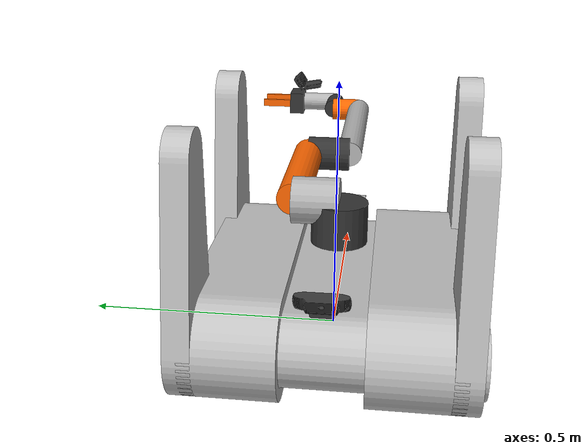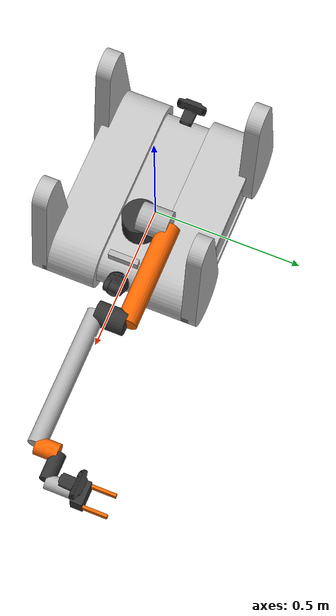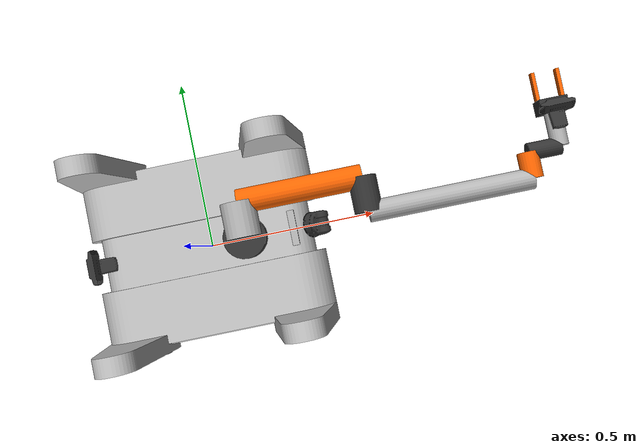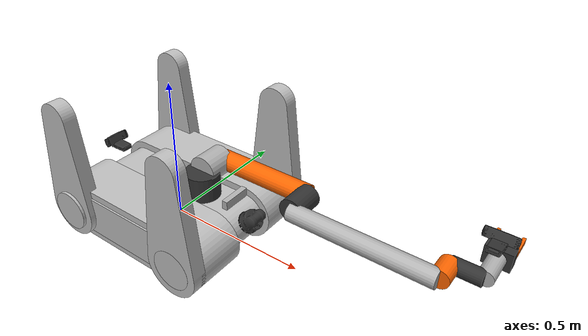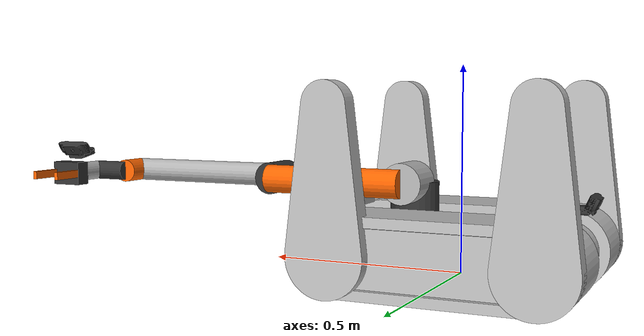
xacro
<?xml version="1.0"?>
<robot name="rescue_robot" xmlns:xacro="http://ros.org/wiki/xacro">

  <!-- ================= DIMENSIONES ================= -->
  <xacro:property name="H_BASE" value="0.15830"/>
  <xacro:property name="OFF_SHOULDER" value="0.10030"/>
  <xacro:property name="L_UPPER" value="0.35316"/>
  <xacro:property name="OFF_ELBOW" value="-0.10030"/>
  <xacro:property name="L_FORE" value="0.46600"/>
  <xacro:property name="L_WRIST1" value="0.07400"/>
  <xacro:property name="L_WRIST_END" value="0.09350"/>
  <xacro:property name="L_TOOL" value="0.28450"/>
  <xacro:property name="L_TOOL_END" value="${L_TOOL-L_WRIST_END}"/>

  <!-- ================= MATERIALES ================= -->
  <material name="gray"><color rgba="0.7 0.7 0.7 1.0"/></material>
  <material name="orange"><color rgba="1.0 0.4 0.0 1.0"/></material>
  <material name="black"><color rgba="0.2 0.2 0.2 1.0"/></material>
  <material name="silver"><color rgba="0.75 0.75 0.75 1.0"/></material>

  <!-- ================= BASE ROBOT ================= -->

  <link name="base_footprint">
    <visual>
      <geometry>
        <box size="0.001 0.001 0.001"/>
      </geometry>
    </visual>
  </link>

  <joint name="base_to_base_footprint" type="fixed">
    <parent link="base_link"/>
    <child link="base_footprint"/>
    <origin xyz="0 0 -0.03" rpy="0 0 0"/>
  </joint>

  <link name="base_link">
    <inertial>
      <origin xyz="0 0 0" rpy="0 0 0"/>
      <mass value="25"/>
      <inertia ixx="1.238151" iyy="1.620218" izz="2.702376" ixy="0.0" iyz="-0.0" ixz="0.0"/>
    </inertial>
    <visual>
      <origin xyz="0 0.55 0" rpy="0 0 0"/>
      <geometry>
        <mesh filename="package://aesir_robot_description/meshes/base_link.stl" scale="0.001 0.001 0.001"/>
      </geometry>
      <material name="silver"/>
    </visual>
    <collision>
      <origin xyz="0 0.55 0" rpy="0 0 0"/>
      <geometry>
        <mesh filename="package://aesir_robot_description/meshes/base_link.stl" scale="0.001 0.001 0.001"/>
      </geometry>
    </collision>
  </link>

  <link name="tracked_1_link">
    <inertial>
      <origin xyz="0 0 0" rpy="0 0 0"/>
      <mass value="3.5"/>
      <inertia ixx="0.064824" iyy="0.377269" izz="0.351452" ixy="0.0" iyz="-0.0" ixz="-0.0"/>
    </inertial>
    <visual>
      <origin xyz="0.24 0.806 -0.06" rpy="0 0 0"/>
      <geometry>
        <mesh filename="package://aesir_robot_description/meshes/tracked_1.stl" scale="0.001 0.001 0.001"/>
      </geometry>
      <material name="silver"/>
    </visual>
    <collision>
      <origin xyz="0.24 0.806 -0.06" rpy="0 0 0"/>
      <geometry>
        <mesh filename="package://aesir_robot_description/meshes/tracked_1.stl" scale="0.001 0.001 0.001"/>
      </geometry>
    </collision>
  </link>

  <link name="tracked_2_link">
    <inertial>
      <origin xyz="0 0 0" rpy="0 0 0"/>
      <mass value="3.5"/>
      <inertia ixx="0.064824" iyy="0.377269" izz="0.351452" ixy="0.0" iyz="0.0" ixz="-0.0"/>
    </inertial>
    <visual>
      <origin xyz="0.24 0.306 -0.06" rpy="0 0 0"/>
      <geometry>
        <mesh filename="package://aesir_robot_description/meshes/tracked_2.stl" scale="0.001 0.001 0.001"/>
      </geometry>
      <material name="silver"/>
    </visual>
    <collision>
      <origin xyz="0.24 0.306 -0.06" rpy="0 0 0"/>
      <geometry>
        <mesh filename="package://aesir_robot_description/meshes/tracked_2.stl" scale="0.001 0.001 0.001"/>
      </geometry>
    </collision>
  </link>

  <!-- ================= SENSORS ================= -->
  <link name="lidar_link">
    <visual>
      <origin rpy="0 0 0" xyz="0 0 0"/>
      <geometry>
        <mesh filename="package://aesir_robot_description/meshes/lidar.stl" scale="0.001 0.001 0.001"/>
      </geometry>
      <material name="black"/>
    </visual>
    <collision>
      <origin rpy="0 0 0" xyz="0 0 0"/>
      <geometry>
        <mesh filename="package://aesir_robot_description/meshes/lidar.stl" scale="0.001 0.001 0.001"/>
      </geometry>
    </collision>
    <inertial>
      <mass value="0.2"/>
      <inertia ixx="0.001" ixy="0" ixz="0" iyy="0.001" iyz="0" izz="0.001"/>
    </inertial>
  </link>

  <joint name="lidar_joint" type="fixed">
    <parent link="base_link"/>
    <child link="lidar_link"/>
    <origin xyz="0.320 0 0.105" rpy="0 0.785398 0"/>
  </joint>

  <link name="oakd_link">
    <visual>
      <geometry>
        <box size="0.02 0.1 0.03"/>
      </geometry>
      <material name="gray"/>
    </visual>
    <collision>
      <geometry>
        <box size="0.02 0.1 0.03"/>
      </geometry>
    </collision>
    <inertial>
      <mass value="0.1"/>
      <inertia ixx="0.0001" ixy="0" ixz="0" iyy="0.0001" iyz="0" izz="0.0001"/>
    </inertial>
  </link>

  <joint name="oakd_joint" type="fixed">
    <parent link="base_link"/>
    <child link="oakd_link"/>
    <origin xyz="0.257 0 0.17" rpy="0 0 0"/>
  </joint>

  <link name="arm_camera_link">
    <visual>
      <origin rpy="0 0 -1.5708" xyz="0.02 0.04 -0.2"/>
      <geometry>
        <mesh filename="package://aesir_robot_description/meshes/logitech_c920.stl" scale="0.001 0.001 0.001"/>
      </geometry>
      <material name="black"/>
    </visual>
    <collision>
      <origin rpy="0 0 -1.5708" xyz="0.02 0.04 -0.2"/>
      <geometry>
        <mesh filename="package://aesir_robot_description/meshes/logitech_c920.stl" scale="0.001 0.001 0.001"/>
      </geometry>
    </collision>
    <inertial>
      <mass value="0.05"/>
      <inertia ixx="0.00001" ixy="0" ixz="0" iyy="0.00001" iyz="0" izz="0.00001"/>
    </inertial>
  </link>

  <joint name="arm_camera_joint" type="fixed">
    <parent link="link_6"/>
    <child link="arm_camera_link"/>
    <origin xyz="0 0 0.06" rpy="-0.174533 0 0"/>
  </joint>

  <link name="back_camera_link">
    <visual>
      <origin rpy="0 0 3.14159" xyz="0.04 -0.027 -0.19"/>
      <geometry>
        <mesh filename="package://aesir_robot_description/meshes/logitech_c920.stl" scale="0.001 0.001 0.001"/>
      </geometry>
      <material name="black"/>
    </visual>
    <collision>
      <origin rpy="0 0 3.14159" xyz="0.04 -0.027 -0.19"/>
      <geometry>
        <mesh filename="package://aesir_robot_description/meshes/logitech_c920.stl" scale="0.001 0.001 0.001"/>
      </geometry>
    </collision>
    <inertial>
      <mass value="0.05"/>
      <inertia ixx="0.00001" ixy="0" ixz="0" iyy="0.00001" iyz="0" izz="0.00001"/>
    </inertial>
  </link>

  <joint name="back_camera_joint" type="fixed">
    <parent link="base_link"/>
    <child link="back_camera_link"/>
    <origin xyz="-0.30 0 0.17" rpy="0 0 3.14159"/>
  </joint>

  <!-- ================= FLIPPER 1 ================= -->
  <link name="flipper_1_link">
    <inertial>
      <origin xyz="5.551115123125783e-17 0.003554085914685201 0.15154044804505273" rpy="0 0 0"/>
      <mass value="3.742066453745571"/>
      <inertia ixx="0.065573" iyy="0.072966" izz="0.008972" ixy="0.0" iyz="-0.00082" ixz="-0.0"/>
    </inertial>
    <visual>
      <origin xyz="0.24 0.836 -0.06" rpy="0 0 0"/>
      <geometry>
        <mesh filename="package://aesir_robot_description/meshes/flipper_1_1.stl" scale="0.001 0.001 0.001"/>
      </geometry>
      <material name="silver"/>
    </visual>
    <collision>
      <origin xyz="0.24 0.836 -0.06" rpy="0 0 3.14159"/>
      <geometry>
        <mesh filename="package://aesir_robot_description/meshes/flipper_1_1.stl" scale="0.001 0.001 0.001"/>
      </geometry>
    </collision>
  </link>

  <!-- ================= FLIPPER 2 ================= -->
  <link name="flipper_2_link">
    <inertial>
      <origin xyz="-2.7755575615628914e-17 -0.0035540859146853676 0.15154044804505265" rpy="0 0 0"/>
      <mass value="3.7420664537455717"/>
      <inertia ixx="0.065573" iyy="0.072966" izz="0.008972" ixy="0.0" iyz="0.00082" ixz="0.0"/>
    </inertial>
    <visual>
      <origin xyz="-0.24 0.276 -0.06" rpy="0 0 0"/>
      <geometry>
        <mesh filename="package://aesir_robot_description/meshes/flipper_4_1.stl" scale="0.001 0.001 0.001"/>
      </geometry>
      <material name="silver"/>
    </visual>
    <collision>
      <origin xyz="-0.24 0.276 -0.06" rpy="0 0 0"/>
      <geometry>
        <mesh filename="package://aesir_robot_description/meshes/flipper_4_1.stl" scale="0.001 0.001 0.001"/>
      </geometry>
    </collision>
  </link>

  <!-- ================= FLIPPER 3 ================= -->
  <link name="flipper_3_link">
    <inertial>
      <origin xyz="5.551115123125783e-17 -0.0035540859146853676 0.15154044804505276" rpy="0 0 0"/>
      <mass value="3.7420664537455717"/>
      <inertia ixx="0.065573" iyy="0.072966" izz="0.008972" ixy="-0.0" iyz="0.00082" ixz="0.0"/>
    </inertial>
    <visual>
      <origin xyz="0.24 0.276 -0.06" rpy="0 0 0"/>
      <geometry>
        <mesh filename="package://aesir_robot_description/meshes/flipper_3_1.stl" scale="0.001 0.001 0.001"/>
      </geometry>
      <material name="silver"/>
    </visual>
    <collision>
      <origin xyz="0.24 0.276 -0.06" rpy="0 0 0"/>
      <geometry>
        <mesh filename="package://aesir_robot_description/meshes/flipper_3_1.stl" scale="0.001 0.001 0.001"/>
      </geometry>
    </collision>
  </link>

  <!-- ================= FLIPPER 4 ================= -->
  <link name="flipper_4_link">
    <inertial>
      <origin xyz="-2.7755575615628914e-17 -0.0035540859146853676 0.15154044804505265" rpy="0 0 0"/>
      <mass value="3.7420664537455717"/>
      <inertia ixx="0.065573" iyy="0.072966" izz="0.008972" ixy="0.0" iyz="0.00082" ixz="0.0"/>
    </inertial>
    <visual>
      <origin xyz="-0.24 0.276 -0.06" rpy="0 0 0"/>
      <geometry>
        <mesh filename="package://aesir_robot_description/meshes/flipper_4_1.stl" scale="0.001 0.001 0.001"/>
      </geometry>
      <material name="silver"/>
    </visual>
    <collision>
      <origin xyz="-0.24 0.276 -0.06" rpy="0 0 0"/>
      <geometry>
        <mesh filename="package://aesir_robot_description/meshes/flipper_4_1.stl" scale="0.001 0.001 0.001"/>
      </geometry>
    </collision>
  </link>

  <!-- ================= JOINTS BASE AND FLIPPERS ================= -->

  <joint name="Rigid 1" type="fixed">
    <origin xyz="-0.24 -0.256 0.06" rpy="0 0 0"/>
    <parent link="base_link"/>
    <child link="tracked_1_link"/>
  </joint>

  <joint name="Rigid 2" type="fixed">
    <origin xyz="-0.24 0.256 0.06" rpy="0 0 0"/>
    <parent link="base_link"/>
    <child link="tracked_2_link"/>
  </joint>

  <joint name="flipper_joint_1" type="continuous">
    <origin xyz="-0.24 -0.256 0.06" rpy="0 0 0"/>
    <parent link="base_link"/>
    <child link="flipper_1_link"/>
    <axis xyz="0.0 -1.0 0.0"/>
  </joint>

  <joint name="flipper_joint_2" type="continuous">
    <origin xyz="0.24 -0.256 0.06" rpy="0 0 0"/>
    <parent link="base_link"/>
    <child link="flipper_2_link"/>
    <axis xyz="0.0 -1.0 0.0"/>
  </joint>

  <joint name="flipper_joint_3" type="continuous">
    <origin xyz="0.24 0.256 0.06" rpy="0 0 0"/>
    <parent link="base_link"/>
    <child link="flipper_4_link"/>
    <axis xyz="0.0 1.0 0.0"/>
  </joint>

  <joint name="flipper_joint_4" type="continuous">
    <origin xyz="-0.24 0.256 0.06" rpy="0 0 0"/>
    <parent link="base_link"/>
    <child link="flipper_3_link"/>
    <axis xyz="0.0 1.0 0.0"/>
  </joint>

  <!-- ================= BASE ARM ================= -->
  <joint name="arm_mount_joint" type="fixed">
    <parent link="base_link"/>
    <child link="arm_base_link"/>
    <origin xyz="0.12 0 0.06" rpy="0 0 0"/>
  </joint>

  <link name="arm_base_link">
    <visual>
      <origin xyz="0 0 ${H_BASE/2}" rpy="0 0 0"/>
      <geometry><cylinder radius="0.06" length="${H_BASE}"/></geometry>
      <material name="black"/>
    </visual>
    <collision>
      <origin xyz="0 0 ${H_BASE/2}" rpy="0 0 0"/>
      <geometry><cylinder radius="0.06" length="${H_BASE}"/></geometry>
    </collision>
  </link>

  <!-- ================= JOINT 1 ================= -->
  <joint name="joint_1" type="revolute">
    <parent link="arm_base_link"/>
    <child link="link_1"/>
    <origin xyz="0 0 ${H_BASE}" rpy="0 0 0"/>
    <axis xyz="0 0 1"/>
    <limit lower="-3.14" upper="3.14" effort="150.0" velocity="3.14"/>
  </joint>

  <link name="link_1">
    <visual>
      <origin xyz="0 ${OFF_SHOULDER/2} 0" rpy="${pi/2} 0 0"/>
      <geometry><cylinder radius="0.05" length="${OFF_SHOULDER}"/></geometry>
      <material name="gray"/>
    </visual>
    <collision>
      <origin xyz="0 ${OFF_SHOULDER/2} 0" rpy="${pi/2} 0 0"/>
      <geometry><cylinder radius="0.05" length="${OFF_SHOULDER}"/></geometry>
    </collision>
    <inertial>
      <origin xyz="0 0 0" rpy="0 0 0"/>
      <mass value="1.5"/>
      <inertia ixx="0.01" ixy="0" ixz="0"
              iyy="0.01" iyz="0" izz="0.005"/>
    </inertial>
  </link>

  <!-- ================= JOINT 2 ================= -->
  <joint name="joint_2" type="revolute">
    <parent link="link_1"/>
    <child link="link_2"/>
    <origin xyz="0 ${OFF_SHOULDER} 0" rpy="0 0 0"/>
    <axis xyz="0 1 0"/>
    <limit lower="-3.14" upper="3.14" effort="150.0" velocity="3.14"/>
  </joint>

  <link name="link_2">
    <visual>
      <origin xyz="${L_UPPER/2} 0 0" rpy="0 ${pi/2} 0"/>
      <geometry><cylinder radius="0.035" length="${L_UPPER}"/></geometry>
      <material name="orange"/>
    </visual>
    <collision>
      <origin xyz="${L_UPPER/2} 0 0" rpy="0 ${pi/2} 0"/>
      <geometry><cylinder radius="0.035" length="${L_UPPER}"/></geometry>
    </collision>
    <visual>
      <origin xyz="${L_UPPER} ${OFF_ELBOW/2} 0" rpy="${pi/2} 0 0"/>
      <geometry><cylinder radius="0.04" length="${-OFF_ELBOW}"/></geometry>
      <material name="black"/>
    </visual>
    <collision>
      <origin xyz="${L_UPPER} ${OFF_ELBOW/2} 0" rpy="${pi/2} 0 0"/>
      <geometry><cylinder radius="0.04" length="${-OFF_ELBOW}"/></geometry>
    </collision>
    <inertial>
      <origin xyz="0 0 0" rpy="0 0 0"/>
      <mass value="1.5"/>
      <inertia ixx="0.01" ixy="0" ixz="0"
              iyy="0.01" iyz="0" izz="0.005"/>
    </inertial>
  </link>

  <!-- ================= JOINT 3 ================= -->
  <joint name="joint_3" type="revolute">
    <parent link="link_2"/>
    <child link="link_3"/>
    <origin xyz="${L_UPPER} ${OFF_ELBOW} 0" rpy="0 0 0"/>
    <axis xyz="0 1 0"/>
    <limit lower="-3.14" upper="3.14" effort="150.0" velocity="3.14"/>
  </joint>

  <link name="link_3">
    <visual>
      <origin xyz="${L_FORE/2} 0 0" rpy="0 ${pi/2} 0"/>
      <geometry><cylinder radius="0.03" length="${L_FORE}"/></geometry>
      <material name="gray"/>
    </visual>
    <collision>
      <origin xyz="${L_FORE/2} 0 0" rpy="0 ${pi/2} 0"/>
      <geometry><cylinder radius="0.03" length="${L_FORE}"/></geometry>
    </collision>
    <visual>
      <origin xyz="${L_FORE} ${L_WRIST1/2} 0" rpy="${pi/2} 0 0"/>
      <geometry><cylinder radius="0.03" length="${L_WRIST1}"/></geometry>
      <material name="orange"/>
    </visual>
    <collision>
      <origin xyz="${L_FORE} ${L_WRIST1/2} 0" rpy="${pi/2} 0 0"/>
      <geometry><cylinder radius="0.03" length="${L_WRIST1}"/></geometry>
    </collision>
    <inertial>
      <origin xyz="0 0 0" rpy="0 0 0"/>
      <mass value="1.5"/>
      <inertia ixx="0.01" ixy="0" ixz="0"
              iyy="0.01" iyz="0" izz="0.005"/>
    </inertial>
  </link>

  <!-- ================= JOINT 4 ================= -->
  <joint name="joint_4" type="revolute">
    <parent link="link_3"/>
    <child link="link_4"/>
    <origin xyz="${L_FORE} ${L_WRIST1} 0" rpy="0 0 0"/>
    <axis xyz="0 1 0"/>
    <limit lower="-3.14" upper="3.14" effort="50.0" velocity="3.14"/>
  </joint>

  <link name="link_4">
    <visual>
      <origin xyz="${L_WRIST_END/2} 0 0" rpy="0 ${pi/2} 0"/>
      <geometry><cylinder radius="0.025" length="${L_WRIST_END}"/></geometry>
      <material name="black"/>
    </visual>
    <collision>
      <origin xyz="${L_WRIST_END/2} 0 0" rpy="0 ${pi/2} 0"/>
      <geometry><cylinder radius="0.025" length="${L_WRIST_END}"/></geometry>
    </collision>
    <inertial>
      <origin xyz="0 0 0" rpy="0 0 0"/>
      <mass value="1.5"/>
      <inertia ixx="0.01" ixy="0" ixz="0"
              iyy="0.01" iyz="0" izz="0.005"/>
    </inertial>
  </link>

  <!-- ================= JOINT 5 ================= -->
  <joint name="joint_5" type="revolute">
    <parent link="link_4"/>
    <child link="link_5"/>
    <origin xyz="${L_WRIST_END} 0 0" rpy="0 0 0"/>
    <axis xyz="1 0 0"/>
    <limit lower="-3.14" upper="3.14" effort="50.0" velocity="3.14"/>
  </joint>

  <link name="link_5">
    <visual>
      <origin xyz="0 ${L_WRIST_END/2} 0" rpy="${pi/2} 0 0"/>
      <geometry><cylinder radius="0.025" length="${L_WRIST_END}"/></geometry>
      <material name="gray"/>
    </visual>
    <collision>
      <origin xyz="0 ${L_WRIST_END/2} 0" rpy="${pi/2} 0 0"/>
      <geometry><cylinder radius="0.025" length="${L_WRIST_END}"/></geometry>
    </collision>
    <inertial>
      <origin xyz="0 0 0" rpy="0 0 0"/>
      <mass value="1.5"/>
      <inertia ixx="0.01" ixy="0" ixz="0"
              iyy="0.01" iyz="0" izz="0.005"/>
    </inertial>
  </link>

  <!-- ================= JOINT 6 ================= -->
  <joint name="joint_6" type="revolute">
    <parent link="link_5"/>
    <child link="link_6"/>
    <origin xyz="0 ${L_WRIST_END} 0" rpy="0 0 0"/>
    <axis xyz="0 1 0"/>
    <limit lower="-3.14" upper="3.14" effort="50.0" velocity="3.14"/>
  </joint>

  <link name="link_6">
    <visual>
      <origin xyz="0 0 0" rpy="${-pi/2} 0 0"/>
      <geometry><cylinder radius="0.01" length="0"/></geometry>
      <material name="orange"/>
    </visual>
    <collision>
      <origin xyz="0 0 0" rpy="${-pi/2} 0 0"/>
      <geometry><cylinder radius="0.01" length="0"/></geometry>
    </collision>
    <inertial>
      <origin xyz="0 0 0" rpy="0 0 0"/>
      <mass value="1.5"/>
      <inertia ixx="0.01" ixy="0" ixz="0"
              iyy="0.01" iyz="0" izz="0.005"/>
    </inertial>
  </link>

    <!-- ================= GRIPPER ================= -->

  <link name="gripper_base_link">
    <visual>
      <origin xyz="0 0.02 0" rpy="0 0 0"/>
      <geometry>
        <box size="0.08 0.04 0.06"/>
      </geometry>
      <material name="black"/>
    </visual>
    <collision>
      <origin xyz="0 0.02 0" rpy="0 0 0"/>
      <geometry>
        <box size="0.08 0.04 0.06"/>
      </geometry>
    </collision>
    <inertial>
      <mass value="0.3"/>
      <inertia ixx="0.001" ixy="0" ixz="0" iyy="0.001" iyz="0" izz="0.001"/>
    </inertial>
  </link>

  <joint name="gripper_mount_joint" type="fixed">
    <parent link="link_6"/>
    <child link="gripper_base_link"/>
    <origin xyz="0 0 0" rpy="0 0 0"/>
  </joint>

  <link name="left_finger_link">
    <visual>
      <origin xyz="0 0.04 0" rpy="0 0 0"/>
      <geometry>
        <box size="0.01 0.08 0.02"/>
      </geometry>
      <material name="orange"/>
    </visual>
    <collision>
      <origin xyz="0 0.04 0" rpy="0 0 0"/>
      <geometry>
        <box size="0.01 0.08 0.02"/>
      </geometry>
    </collision>
    <inertial>
      <mass value="0.05"/>
      <inertia ixx="0.0001" ixy="0" ixz="0" iyy="0.0001" iyz="0" izz="0.0001"/>
    </inertial>
  </link>

  <joint name="left_finger_joint" type="prismatic">
    <parent link="gripper_base_link"/>
    <child link="left_finger_link"/>
    <origin xyz="-0.035 0.04 0" rpy="0 0 0"/>
    <axis xyz="1 0 0"/>
    <limit lower="0" upper="0.03" effort="50.0" velocity="0.5"/>
  </joint>

  <link name="right_finger_link">
    <visual>
      <origin xyz="0 0.04 0" rpy="0 0 0"/>
      <geometry>
        <box size="0.01 0.08 0.02"/>
      </geometry>
      <material name="orange"/>
    </visual>
    <collision>
      <origin xyz="0 0.04 0" rpy="0 0 0"/>
      <geometry>
        <box size="0.01 0.08 0.02"/>
      </geometry>
    </collision>
    <inertial>
      <mass value="0.05"/>
      <inertia ixx="0.0001" ixy="0" ixz="0" iyy="0.0001" iyz="0" izz="0.0001"/>
    </inertial>
  </link>

  <joint name="right_finger_joint" type="prismatic">
    <parent link="gripper_base_link"/>
    <child link="right_finger_link"/>
    <origin xyz="0.035 0.04 0" rpy="0 0 0"/>
    <axis xyz="-1 0 0"/>
    <limit lower="0" upper="0.03" effort="50.0" velocity="0.5"/>
  </joint>

</robot>
